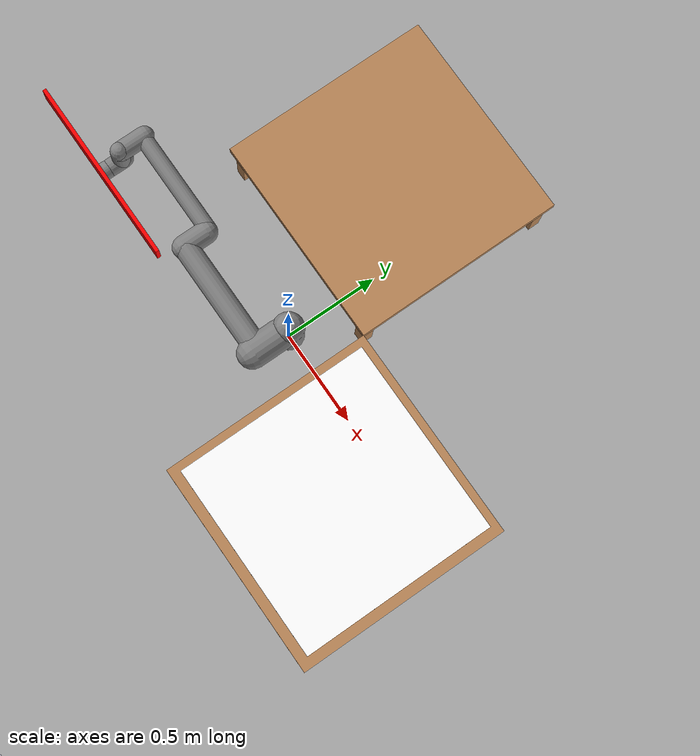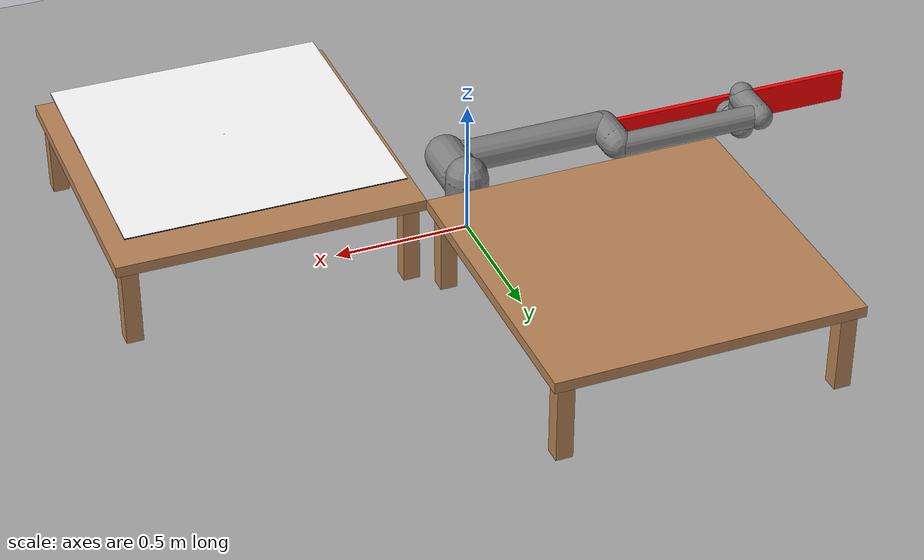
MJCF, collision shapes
<mujoco model="ur10e_pick_place">

  <include file="ur10e_vacuum_gripper.xml"/>

  <option timestep="0.002" gravity="0 0 -9.81" iterations="50" solver="Newton"/>

  <equality>
    <weld name="vacuum_attach_sheet1" site1="vacuum_site" site2="sheet1" active="false"/>

    <weld name="vacuum_attach_sheet2" site1="vacuum_site" site2="sheet2" active="false"/>
  </equality>

  <asset>
    <texture name="tex_floor" type="2d" builtin="checker"
             rgb1="0.75 0.75 0.75" rgb2="0.55 0.55 0.55"
             width="512" height="512"/>
    <material name="mat_floor"  texture="tex_floor" texrepeat="4 4"/>
    <material name="mat_table"  rgba="0.72 0.52 0.34 1"/>
    <material name="mat_target" rgba="0.1 0.9 0.1 0.4"/>
    <texture name="sheet_img_tex" type="2d" file="carbon.png"/>
    <material name="mat_sheet_img" texture="sheet_img_tex" rgba="2 2 2 1" emission="0.5"/>
  </asset>

  <worldbody>
    <light name="sun"  pos="0 0 4"   dir="0 0 -1"   diffuse="0.7 0.7 0.7" castshadow="true"/>
    <light name="fill" pos="2 2 2"   dir="-1 -1 -1" diffuse="0.3 0.3 0.35"/>

    <geom name="floor" type="plane" size="4 4 0.1" material="mat_floor"
          contype="1" conaffinity="1"/>

    <!-- Tray: top surface at z = 0.372 -->
    <body name="tray" pos="0.8 -0.3 0.155">
      <geom type="box" size="0.55 0.55 0.02"  pos="0.0 0  0.155" material="mat_table"
            contype="1" conaffinity="1"/>
      <geom type="box" size="0.03 0.03 0.155" pos=" 0.5  0.5 0" material="mat_table"/>
      <geom type="box" size="0.03 0.03 0.155" pos="-0.5 -0.5 0" material="mat_table"/>
      <geom type="box" size="0.03 0.03 0.155" pos=" 0.5 -0.5 0" material="mat_table"/>
      <geom type="box" size="0.03 0.03 0.155" pos="-0.5 0.5 0" material="mat_table"/>
    </body>

    <body name="table" pos="-0.3 0.8 0.155">
      <geom type="box" size="0.55 0.55 0.02"  pos="0.0 0  0.155" material="mat_table"
            contype="1" conaffinity="1"/>
      <geom type="box" size="0.03 0.03 0.155" pos=" 0.5  0.5 0" material="mat_table"/>
      <geom type="box" size="0.03 0.03 0.155" pos="-0.5 -0.5 0" material="mat_table"/>
      <geom type="box" size="0.03 0.03 0.155" pos=" 0.5 -0.5 0" material="mat_table"/>
      <geom type="box" size="0.03 0.03 0.155" pos="-0.5 0.5 0" material="mat_table"/>
    </body>

    <body name="sheet1" pos="0.8 -0.3 0.400">
      <joint name="sheet1_free" type="free"/>
      <geom type="box" size="0.5 0.5 0.001"
            rgba="0.25 0.25 0.25 1" mass="0.01"
            friction="1 1 1" contype="1" conaffinity="1" margin="0.002" gap="0.001" solref="0.001 1" solimp="0.99 0.995 0.0001"/>
      <!-- image only on top face -->
      <geom name="sheet1_image" type="box"
            pos="0 0 0.0012"
            size="0.5 0.5 0.00002"
            quat="0.7071 0 0 0.7071"
            material="mat_sheet_img"
            contype="0" conaffinity="0"
            group="1"/>
      <site name="sheet1" pos="0.0 0.0 0.001" size="0.001" quat="1 0 0 0"/>
    </body>

    <body name="sheet2" pos="0.8 -0.3 0.402">
      <joint name="sheet2_free" type="free"/>
      <geom type="box" size="0.5 0.5 0.001"
            rgba="0.25 0.25 0.25 1" mass="0.01"
            friction="1 1 1" contype="1" conaffinity="1" margin="0.002" gap="0.001" solref="0.001 1" solimp="0.99 0.995 0.0001"/>
      <geom name="sheet2_image" type="box"
            pos="0 0 0.0012"
            size="0.5 0.5 0.00002"
            material="mat_sheet_img"
            contype="0" conaffinity="0"
            group="1"/>
      <site name="sheet2" pos="0.0 0.0 0.001" size="0.001" quat="0.7071 0 0 0.7071"/>
    </body>

  </worldbody>

</mujoco>

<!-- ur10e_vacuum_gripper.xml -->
<mujoco model="ur10e">
  <compiler angle="radian" meshdir="assets" autolimits="true"/>

  <option integrator="implicitfast"/>

  <default>
    <default class="ur10e">
      <material specular="0.5" shininess="0.25"/>
      <joint axis="0 1 0" range="-6.28319 6.28319" armature="0.1"/>
      <position ctrlrange="-6.2831 6.2831"/>
      <general biastype="affine" ctrlrange="-6.2831 6.2831" gainprm="5000" biasprm="0 -5000 -500"/>
      <default class="size4">
        <joint damping="10"/>
        <general forcerange="-330 330"/>
      </default>
      <default class="size3">
        <joint damping="5"/>
        <general forcerange="-150 150"/>
        <default class="size3_limited">
          <joint range="-3.1415 3.1415"/>
          <general ctrlrange="-3.1415 3.1415"/>
        </default>
      </default>
      <default class="size2">
        <joint damping="2"/>
        <general forcerange="-56 56"/>
      </default>
      <default class="visual">
        <geom type="mesh" contype="0" conaffinity="0" group="2"/>
      </default>
      <default class="collision">
        <geom type="capsule" group="3"/>
        <default class="eef_collision">
          <geom type="cylinder"/>
        </default>
      </default>
      <site size="0.001" rgba="0.5 0.5 0.5 0.3" group="4"/>
    </default>
  </default>

  <asset>
    <material class="ur10e" name="black" rgba="0.033 0.033 0.033 1"/>
    <material class="ur10e" name="jointgray" rgba="0.278 0.278 0.278 1"/>
    <material class="ur10e" name="linkgray" rgba="0.82 0.82 0.82 1"/>
    <material class="ur10e" name="urblue" rgba="0.49 0.678 0.8 1"/>

    <mesh file="base_0.obj"/>
    <mesh file="base_1.obj"/>
    <mesh file="shoulder_0.obj"/>
    <mesh file="shoulder_1.obj"/>
    <mesh file="shoulder_2.obj"/>
    <mesh file="upperarm_0.obj"/>
    <mesh file="upperarm_1.obj"/>
    <mesh file="upperarm_2.obj"/>
    <mesh file="upperarm_3.obj"/>
    <mesh file="forearm_0.obj"/>
    <mesh file="forearm_1.obj"/>
    <mesh file="forearm_2.obj"/>
    <mesh file="forearm_3.obj"/>
    <mesh file="wrist1_0.obj"/>
    <mesh file="wrist1_1.obj"/>
    <mesh file="wrist1_2.obj"/>
    <mesh file="wrist2_0.obj"/>
    <mesh file="wrist2_1.obj"/>
    <mesh file="wrist2_2.obj"/>
    <mesh file="wrist3.obj"/>
  </asset>

  <worldbody>
    <light name="spotlight" mode="targetbodycom" target="wrist_2_link" pos="0 -1 2"/>
    <body name="base" quat="0 0 0 -1" childclass="ur10e">
      <inertial mass="4.0" pos="0 0 0" diaginertia="0.0061063308908 0.0061063308908 0.01125"/>
      <geom mesh="base_0" material="black" class="visual"/>
      <geom mesh="base_1" material="jointgray" class="visual"/>
      <body name="shoulder_link" pos="0 0 0.181">
        <inertial pos="0 0 0" mass="7.778" diaginertia="0.0314743 0.0314743 0.0218756"/>
        <joint name="shoulder_pan_joint" class="size4" axis="0 0 1"/>
        <geom mesh="shoulder_0" material="urblue" class="visual"/>
        <geom mesh="shoulder_1" material="black" class="visual"/>
        <geom mesh="shoulder_2" material="jointgray" class="visual"/>
        <geom class="collision" size="0.078 0.08" pos="0 0 -0.05"/>
        <body name="upper_arm_link" pos="0 0.176 0" quat="1 0 1 0">
          <inertial pos="0 0 0.3065" mass="12.93" diaginertia="0.423074 0.423074 0.0363656"/>
          <joint name="shoulder_lift_joint" class="size4"/>
          <geom mesh="upperarm_0" material="black" class="visual"/>
          <geom mesh="upperarm_1" material="jointgray" class="visual"/>
          <geom mesh="upperarm_2" material="urblue" class="visual"/>
          <geom mesh="upperarm_3" material="linkgray" class="visual"/>
          <geom class="collision" pos="0 -0.05 0" quat="1 1 0 0" size="0.078 0.08"/>
          <geom class="collision" size="0.06 0.3" pos="0 0 0.3"/>
          <body name="forearm_link" pos="0 -0.137 0.613">
            <inertial pos="0 0 0.2855" mass="3.87" diaginertia="0.11059 0.11059 0.0108844"/>
            <joint name="elbow_joint" class="size3_limited"/>
            <geom mesh="forearm_0" material="urblue" class="visual"/>
            <geom mesh="forearm_1" material="black" class="visual"/>
            <geom mesh="forearm_2" material="jointgray" class="visual"/>
            <geom mesh="forearm_3" material="linkgray" class="visual"/>
            <geom class="collision" pos="0 0.08 0" quat="1 1 0 0" size="0.058 0.065"/>
            <geom class="collision" size="0.043 0.28" pos="0 0 0.29"/>
            <body name="wrist_1_link" pos="0 0 0.571" quat="1 0 1 0">
              <inertial pos="0 0.135 0" quat="0.5 0.5 -0.5 0.5" mass="1.96"
                diaginertia="0.0055125 0.00510825 0.00510825"/>
              <joint name="wrist_1_joint" class="size2"/>
              <geom mesh="wrist1_0" material="black" class="visual"/>
              <geom mesh="wrist1_1" material="urblue" class="visual"/>
              <geom mesh="wrist1_2" material="jointgray" class="visual"/>
              <geom class="collision" pos="0 0.06 0" quat="1 1 0 0" size="0.05 0.07"/>
              <body name="wrist_2_link" pos="0 0.135 0">
                <inertial pos="0 0 0.12" quat="0.5 0.5 -0.5 0.5" mass="1.96"
                  diaginertia="0.0055125 0.00510825 0.00510825"/>
                <joint name="wrist_2_joint" axis="0 0 1" class="size2"/>
                <geom mesh="wrist2_0" material="black" class="visual"/>
                <geom mesh="wrist2_1" material="urblue" class="visual"/>
                <geom mesh="wrist2_2" material="jointgray" class="visual"/>
                <geom class="collision" size="0.046 0.065" pos="0 0 0.05"/>
                <geom class="collision" pos="0 0.028 0.12" quat="1 1 0 0" size="0.046 0.043"/>
                <body name="wrist_3_link" pos="0 0 0.12">
                  <inertial pos="0 0.092 0" quat="0 1 -1 0" mass="0.202"
                    diaginertia="0.000204525 0.000144346 0.000144346"/>
                  <joint name="wrist_3_joint" class="size2"/>
                  <geom material="linkgray" mesh="wrist3" class="visual"/>
                  <geom class="eef_collision" pos="0 0.097 0" quat="1 1 0 0" size="0.046 0.02"/>
                  <site name="attachment_site" pos="0 0.1 0" quat="-1 1 0 0"/>
                  <!--Modified from original ur10e: add vacuum gripper -->
                  <body name="vacuum_gripper" pos="0 0.12 0" quat="-1 1 0 0">
                    <geom name="vacuum_beam"
                      type="box"
                      size="0.5 0.06 0.01"
                      rgba="1 0 0 0.5"
                      mass="0.1"
                      friction="1.0 0.1 0.1"
                      contype="1" conaffinity="1"/>

                    <site name="vacuum_site" pos="-0.0 0.0 0.01" size="0.005" rgba="0 1 0 1"/>
                  </body>
                </body>
              </body>
            </body>
          </body>
        </body>
      </body>
    </body>
  </worldbody>

  <actuator>
    <general class="size4" name="shoulder_pan" joint="shoulder_pan_joint"/>
    <general class="size4" name="shoulder_lift" joint="shoulder_lift_joint"/>
    <general class="size3_limited" name="elbow" joint="elbow_joint"/>
    <general class="size2" name="wrist_1" joint="wrist_1_joint"/>
    <general class="size2" name="wrist_2" joint="wrist_2_joint"/>
    <general class="size2" name="wrist_3" joint="wrist_3_joint"/>
  </actuator>

  <keyframe>
    <key name="home" qpos="-1.5708 -1.5708 1.5708 -1.5708 -1.5708 1.5708" ctrl="-1.5708 -1.5708 1.5708 -1.5708 -1.5708 0"/>
  </keyframe>
</mujoco>
